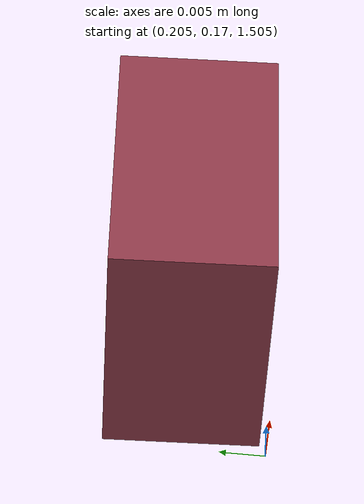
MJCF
<mujoco model="hat">
  <compiler angle="radian" coordinate="local"/>

  <asset>
    <material name="hat" rgba="0.55 0.22 0.28 1" specular="0.3" shininess="0.35"/>
  </asset>

  <worldbody>
    <!--
      Air spawn near other free bodies.
      Half-extents from ALIGN.txt: 0.014618 × 0.0085 × 0.014628 m
      → full ≈ 29.24 × 17.00 × 29.26 mm.
    -->
    <body name="hat" pos="0.22 0.18 1.52" euler="0.05 -0.03 0.1">
      <freejoint name="hat_free"/>
      <!-- ASSUMPTION mass 0.0117 kg; diaginertia = solid-box about COM from AABB. -->
      <inertial pos="0 0 0" mass="0.0117" diaginertia="1.116448e-6 1.668154e-6 1.115335e-6"/>
      <geom name="hat_box" type="box" size="0.014618 0.0085 0.014628"
            material="hat" priority="1"
            solref="0.012 0.25" solimp="0.9 0.95 0.001 0.5 2"/>
    </body>
  </worldbody>
</mujoco>
